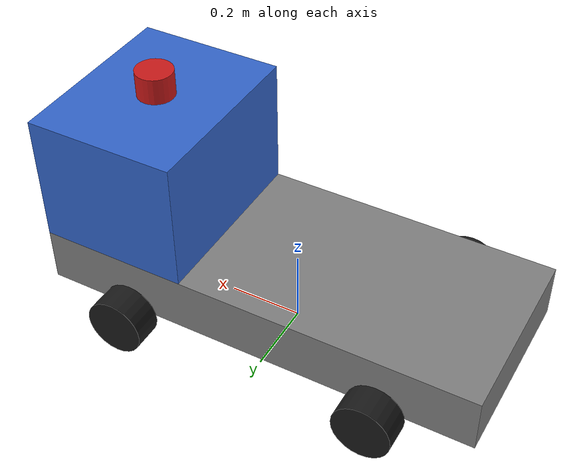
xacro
<?xml version="1.0"?>
<robot xmlns:xacro="http://www.ros.org/wiki/xacro" name="truck_robot">

  <!-- Material definitions for RViz2 -->
  <material name="gray">
    <color rgba="0.5 0.5 0.5 1"/>
  </material>

  <material name="blue">
    <color rgba="0.2 0.4 0.8 1"/>
  </material>

  <material name="red">
    <color rgba="0.8 0.1 0.1 1"/>
  </material>

  <material name="black">
    <color rgba="0.1 0.1 0.1 1"/>
  </material>

  <!-- Define xacro properties for easy customization -->
  <xacro:property name="PI" value="3.14159265359"/>

  <!-- Truck dimensions -->
  <xacro:property name="chassis_length" value="1.2"/>
  <xacro:property name="chassis_width" value="0.5"/>
  <xacro:property name="chassis_height" value="0.15"/>
  <xacro:property name="chassis_mass" value="15.0"/>

  <xacro:property name="cabin_length" value="0.4"/>
  <xacro:property name="cabin_width" value="0.5"/>
  <xacro:property name="cabin_height" value="0.35"/>
  <xacro:property name="cabin_mass" value="5.0"/>

  <!-- Wheel properties -->
  <xacro:property name="wheel_radius" value="0.078"/>
  <xacro:property name="wheel_width" value="0.08"/>
  <xacro:property name="wheel_mass" value="1.0"/>
  <xacro:property name="wheel_offset_x" value="0.35"/>
  <xacro:property name="wheel_offset_y" value="0.3"/>
  <xacro:property name="wheel_offset_z" value="0.0"/>

  <!-- LIDAR properties -->
  <xacro:property name="lidar_radius" value="0.05"/>
  <xacro:property name="lidar_height" value="0.07"/>
  <xacro:property name="lidar_mass" value="0.3"/>

  <!-- Camera properties -->
  <xacro:property name="camera_size" value="0.05"/>
  <xacro:property name="camera_mass" value="0.1"/>

  <!-- Macro for inertial properties of a box -->
  <xacro:macro name="box_inertia" params="mass length width height">
    <inertial>
      <origin xyz="0 0 0" rpy="0 0 0"/>
      <mass value="${mass}"/>
      <inertia ixx="${(1/12) * mass * (width*width + height*height)}" ixy="0.0" ixz="0.0"
               iyy="${(1/12) * mass * (length*length + height*height)}" iyz="0.0"
               izz="${(1/12) * mass * (length*length + width*width)}"/>
    </inertial>
  </xacro:macro>

  <!-- Macro for inertial properties of a cylinder -->
  <xacro:macro name="cylinder_inertia" params="mass radius height">
    <inertial>
      <origin xyz="0 0 0" rpy="0 0 0"/>
      <mass value="${mass}"/>
      <inertia ixx="${(1/12) * mass * (3*radius*radius + height*height)}" ixy="0.0" ixz="0.0"
               iyy="${(1/12) * mass * (3*radius*radius + height*height)}" iyz="0.0"
               izz="${(1/2) * mass * radius * radius}"/>
    </inertial>
  </xacro:macro>

  <!-- Macro for wheels -->
  <xacro:macro name="wheel" params="prefix reflect_y reflect_x">
    <link name="${prefix}_wheel">
      <visual>
        <origin xyz="0 0 0" rpy="${PI/2} 0 0"/>
        <geometry>
          <cylinder radius="${wheel_radius}" length="${wheel_width}"/>
        </geometry>
        <material name="black">
          <color rgba="0.1 0.1 0.1 1"/>
        </material>
      </visual>
      <collision>
        <origin xyz="0 0 0" rpy="${PI/2} 0 0"/>
        <geometry>
          <cylinder radius="${wheel_radius}" length="${wheel_width}"/>
        </geometry>
      </collision>
      <xacro:cylinder_inertia mass="${wheel_mass}" radius="${wheel_radius}" height="${wheel_width}"/>
    </link>

    <joint name="${prefix}_wheel_joint" type="continuous">
      <parent link="base_link"/>
      <child link="${prefix}_wheel"/>
      <origin xyz="${reflect_x * wheel_offset_x} ${reflect_y * wheel_offset_y} ${wheel_offset_z}" rpy="0 0 0"/>
      <axis xyz="0 1 0"/>
    </joint>
  </xacro:macro>

  <!-- Base footprint (for navigation) -->
  <link name="base_footprint"/>

  <!-- Base link (chassis) -->
  <link name="base_link">
    <visual>
      <origin xyz="0 0 ${chassis_height/2}" rpy="0 0 0"/>
      <geometry>
        <box size="${chassis_length} ${chassis_width} ${chassis_height}"/>
      </geometry>
      <material name="gray">
        <color rgba="0.5 0.5 0.5 1"/>
      </material>
    </visual>
    <collision>
      <origin xyz="0 0 ${chassis_height/2}" rpy="0 0 0"/>
      <geometry>
        <box size="${chassis_length} ${chassis_width} ${chassis_height}"/>
      </geometry>
    </collision>
    <xacro:box_inertia mass="${chassis_mass}" length="${chassis_length}" width="${chassis_width}" height="${chassis_height}"/>
  </link>

  <!-- Joint connecting footprint to base_link -->
  <joint name="base_joint" type="fixed">
    <parent link="base_footprint"/>
    <child link="base_link"/>
    <origin xyz="0 0 ${wheel_radius}" rpy="0 0 0"/>
  </joint>

  <!-- Cabin link -->
  <link name="cabin_link">
    <visual>
      <origin xyz="0 0 ${cabin_height/2}" rpy="0 0 0"/>
      <geometry>
        <box size="${cabin_length} ${cabin_width} ${cabin_height}"/>
      </geometry>
      <material name="blue">
        <color rgba="0.2 0.4 0.8 1"/>
      </material>
    </visual>
    <collision>
      <origin xyz="0 0 ${cabin_height/2}" rpy="0 0 0"/>
      <geometry>
        <box size="${cabin_length} ${cabin_width} ${cabin_height}"/>
      </geometry>
    </collision>
    <xacro:box_inertia mass="${cabin_mass}" length="${cabin_length}" width="${cabin_width}" height="${cabin_height}"/>
  </link>

  <!-- Joint connecting cabin to chassis -->
  <joint name="cabin_joint" type="fixed">
    <parent link="base_link"/>
    <child link="cabin_link"/>
    <origin xyz="${chassis_length/2 - cabin_length/2} 0 ${chassis_height}" rpy="0 0 0"/>
  </joint>

  <!-- LIDAR link -->
  <link name="lidar_link">
    <visual>
      <origin xyz="0 0 0" rpy="0 0 0"/>
      <geometry>
        <cylinder radius="${lidar_radius}" length="${lidar_height}"/>
      </geometry>
      <material name="red">
        <color rgba="0.8 0.1 0.1 1"/>
      </material>
    </visual>
    <collision>
      <origin xyz="0 0 0" rpy="0 0 0"/>
      <geometry>
        <cylinder radius="${lidar_radius}" length="${lidar_height}"/>
      </geometry>
    </collision>
    <xacro:cylinder_inertia mass="${lidar_mass}" radius="${lidar_radius}" height="${lidar_height}"/>
  </link>

  <!-- Joint connecting LIDAR to cabin top -->
  <joint name="lidar_joint" type="fixed">
    <parent link="cabin_link"/>
    <child link="lidar_link"/>
    <origin xyz="0 0 ${cabin_height + lidar_height/2}" rpy="0 0 0"/>
  </joint>

  <!-- Camera link -->
  <link name="camera">
    <visual>
      <origin xyz="0 0 0" rpy="0 0 0"/>
      <geometry>
        <box size="${camera_size} ${camera_size} ${camera_size}"/>
      </geometry>
      <material name="black">
        <color rgba="0.1 0.1 0.1 1"/>
      </material>
    </visual>
    <collision>
      <origin xyz="0 0 0" rpy="0 0 0"/>
      <geometry>
        <box size="${camera_size} ${camera_size} ${camera_size}"/>
      </geometry>
    </collision>
    <xacro:box_inertia mass="${camera_mass}" length="${camera_size}" width="${camera_size}" height="${camera_size}"/>
  </link>

  <!-- Joint connecting camera to cabin front -->
  <joint name="camera_joint" type="fixed">
    <parent link="cabin_link"/>
    <child link="camera"/>
    <origin xyz="${cabin_length/2} 0 ${cabin_height/2}" rpy="0 0 0"/>
  </joint>

  <!-- Instantiate wheels -->
<xacro:wheel prefix="front_left" reflect_y="1" reflect_x="1"/>
<xacro:wheel prefix="front_right" reflect_y="-1" reflect_x="1"/>
<xacro:wheel prefix="rear_left" reflect_y="1" reflect_x="-1"/>
<xacro:wheel prefix="rear_right" reflect_y="-1" reflect_x="-1"/>

<!-- ADD THESE WHEEL FRICTION PARAMETERS -->
<gazebo reference="front_left_wheel">
  <mu1>1.0</mu1>
  <mu2>1.0</mu2>
  <kp>10000000.0</kp>
  <kd>1.0</kd>
  <minDepth>0.001</minDepth>
</gazebo>

<gazebo reference="front_right_wheel">
  <mu1>1.0</mu1>
  <mu2>1.0</mu2>
  <kp>10000000.0</kp>
  <kd>1.0</kd>
  <minDepth>0.001</minDepth>
</gazebo>

<gazebo reference="rear_left_wheel">
  <mu1>1.0</mu1>
  <mu2>1.0</mu2>
  <kp>10000000.0</kp>
  <kd>1.0</kd>
  <minDepth>0.001</minDepth>
</gazebo>

<gazebo reference="rear_right_wheel">
  <mu1>1.0</mu1>
  <mu2>1.0</mu2>
  <kp>10000000.0</kp>
  <kd>1.0</kd>
  <minDepth>0.001</minDepth>
</gazebo>

  <gazebo>
    <!-- Differential Drive Controller for Ignition Gazebo -->
    <plugin filename="libignition-gazebo-diff-drive-system.so" name="ignition::gazebo::systems::DiffDrive">
      <left_joint>front_left_wheel_joint</left_joint>
      <left_joint>rear_left_wheel_joint</left_joint>
      <right_joint>front_right_wheel_joint</right_joint>
      <right_joint>rear_right_wheel_joint</right_joint>
      <wheel_separation>${wheel_offset_y * 2}</wheel_separation>
      <wheel_radius>${wheel_radius}</wheel_radius>

      <!-- ADD THIS LINE: Use perfect physics-based odometry -->
      <odometry_source>world</odometry_source>

      <odom_publish_frequency>50</odom_publish_frequency>
      <topic>cmd_vel</topic>
      <odom_topic>odom</odom_topic>
      <tf_topic>/tf</tf_topic>
      <frame_id>odom</frame_id>
      <child_frame_id>base_footprint</child_frame_id>
    </plugin>
  </gazebo>

  <!-- LIDAR sensor for Ignition Gazebo -->
  <gazebo reference="lidar_link">
    <sensor name="lidar_sensor" type="gpu_lidar">
      <topic>scan</topic>
      <update_rate>10.0</update_rate>
      <gz_frame_id>lidar_link</gz_frame_id>
      <lidar>
        <scan>
          <horizontal>
            <samples>360</samples>
            <resolution>1</resolution>
            <min_angle>-${PI}</min_angle>
            <max_angle>${PI}</max_angle>
          </horizontal>
        </scan>
        <range>
          <min>0.2</min>
          <max>5.0</max>
          <resolution>0.01</resolution>
        </range>
      </lidar>
      <always_on>true</always_on>
      <visualize>true</visualize>
    </sensor>
  </gazebo>

  <!-- Sensors system plugin -->
  <gazebo>
    <plugin filename="libignition-gazebo-sensors-system.so" name="ignition::gazebo::systems::Sensors">
      <render_engine>ogre2</render_engine>
    </plugin>
  </gazebo>

  <!-- Joint State Publisher plugin -->
  <gazebo>
  <plugin filename="libignition-gazebo-joint-state-publisher-system.so"
          name="ignition::gazebo::systems::JointStatePublisher">
    <joint_name>front_left_wheel_joint</joint_name>
    <joint_name>front_right_wheel_joint</joint_name>
    <joint_name>rear_left_wheel_joint</joint_name>
    <joint_name>rear_right_wheel_joint</joint_name>
  </plugin>
  </gazebo>

</robot>
